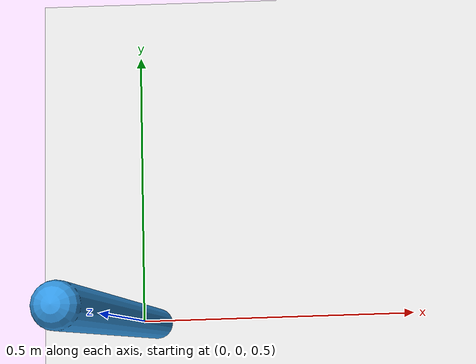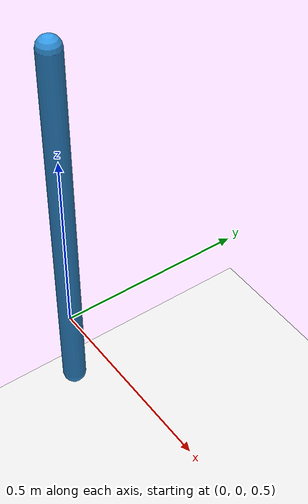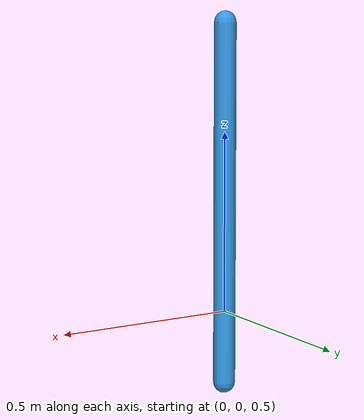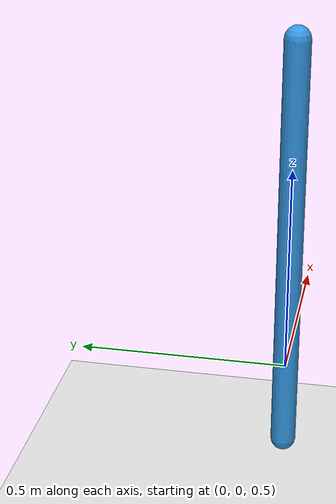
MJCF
<mujoco model="falling_stick">
    <option timestep="0.001" gravity="0 0 -9.81"/>

    <visual>
        <map znear="0.01" zfar="50"/>
    </visual>

    <worldbody>
        <camera name="main"
            pos="0 -4 2"
            quat="0.9239 0.3827 0 0"/>
        <!-- Plane of reference-->

        <geom type="plane"
            size="5 5 0.1"
            rgba="0.9 0.9 0.9 1"/>

        <!-- Pivot point -->
        <body name="stick" pos="0 0 0.3">
            <!-- Hinge allows rotation ONLY about x-axis -->
            <joint name="hinge_x"
                   type="hinge"
                   axis="1 0 0"
                   damping="0.5"/>

            <!-- Long stick geometry -->
            <geom type="capsule"
                  fromto="0 0 0  0 0 1"
                  size="0.03"
                  density="800"
                  rgba="0.2 0.6 0.9 1"/>
        </body>
    </worldbody>
</mujoco>
